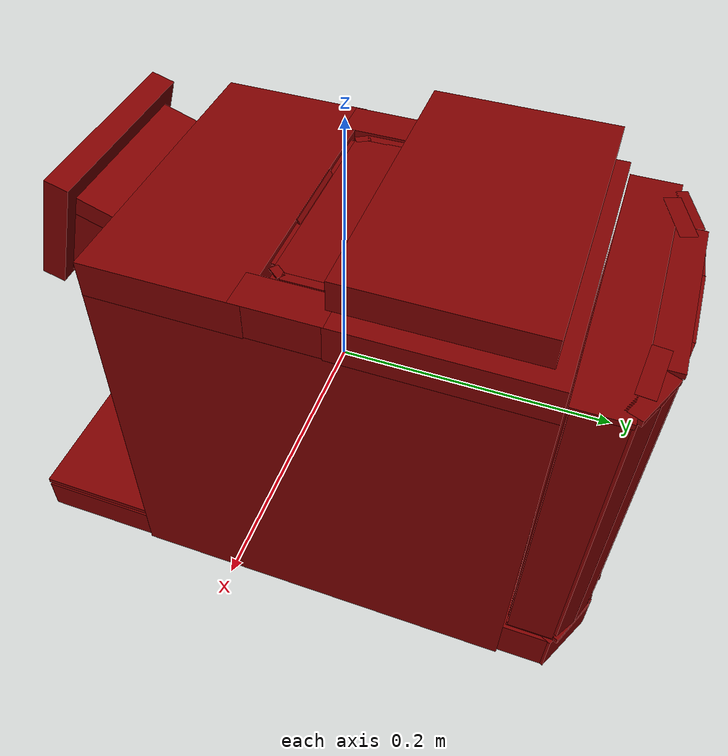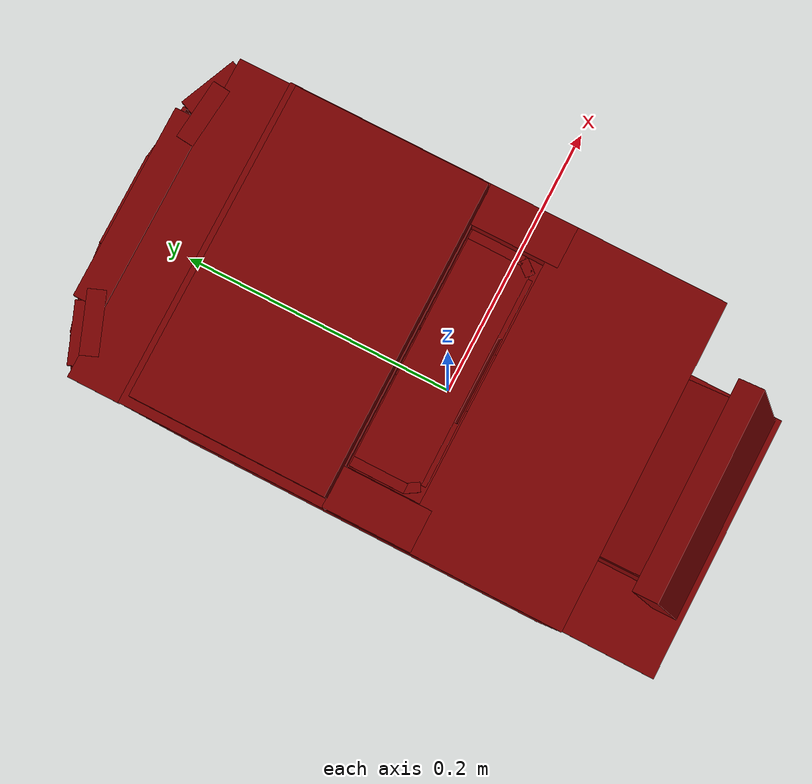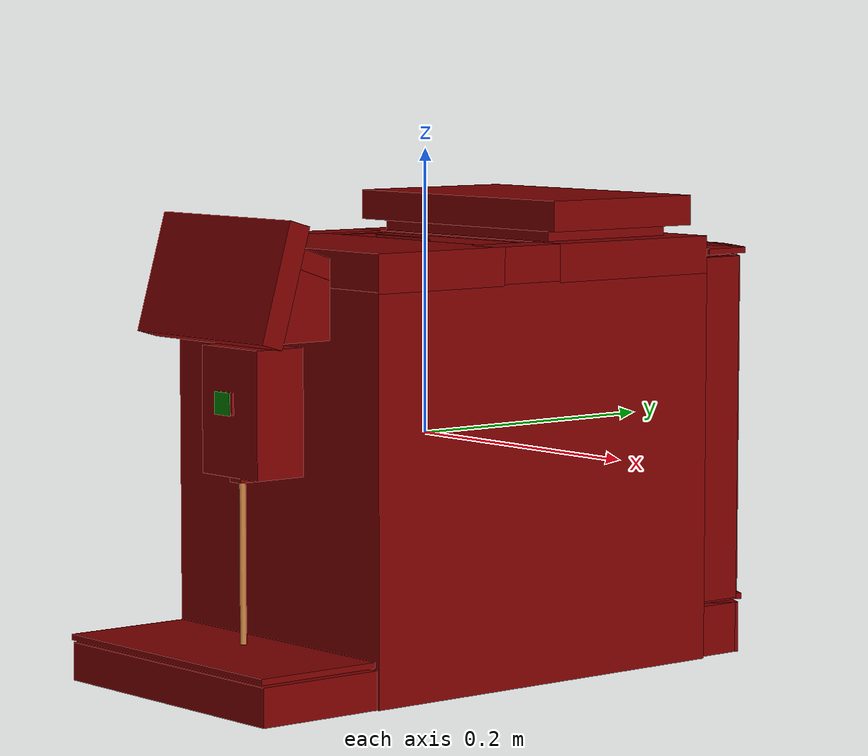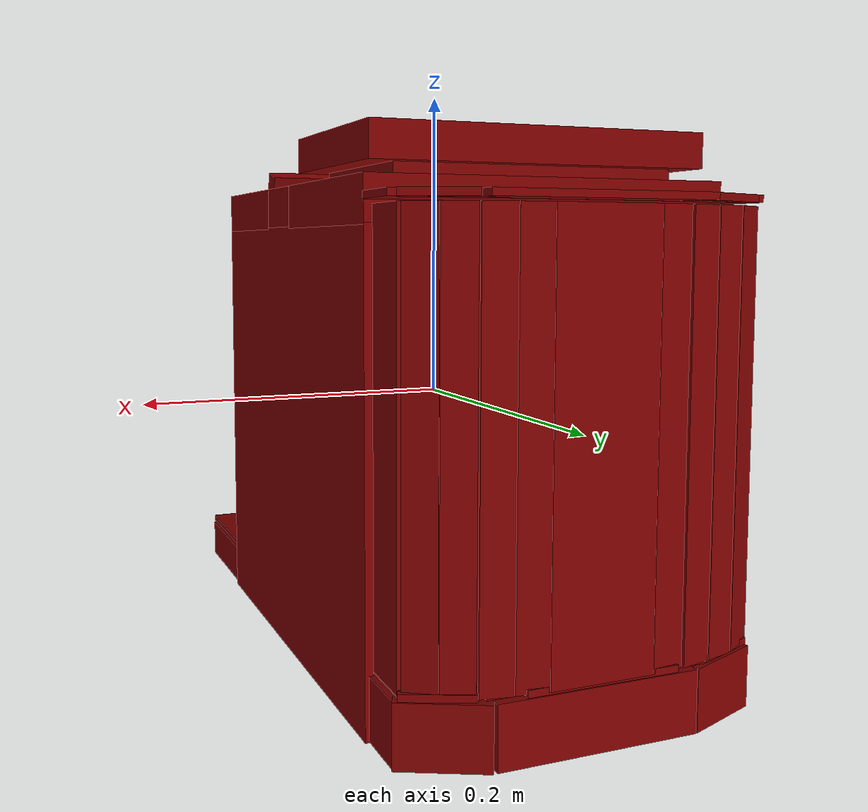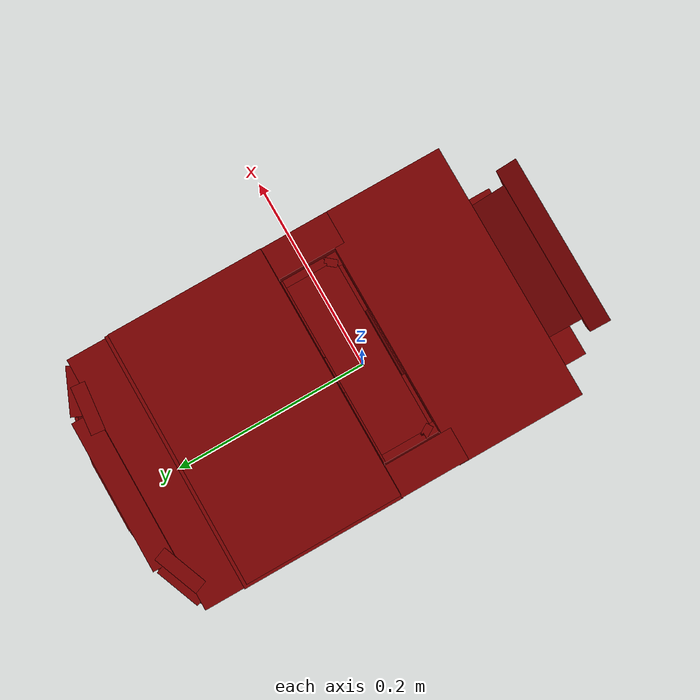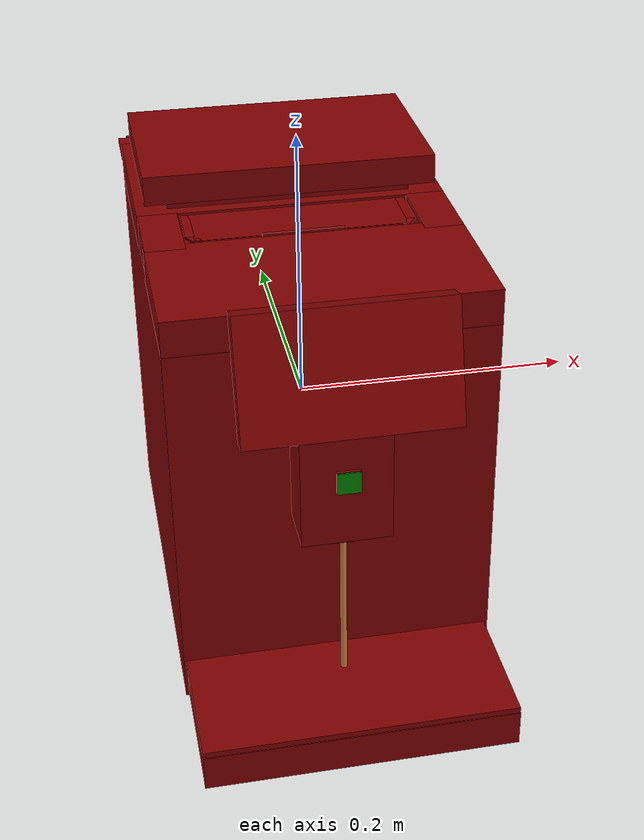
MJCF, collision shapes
<?xml version='1.0' encoding='UTF-8'?>
<mujoco model="model">
  <compiler angle="radian"/>
  <asset>
    <mesh file="visuals/Body001.obj" name="Body001_vis"/>
    <mesh file="visuals/Button001.obj" name="Button001_vis"/>
    <mesh file="visuals/Container001_Clear.obj" name="Container001_Clear_vis"/>
    <mesh file="visuals/Lid001.obj" name="Lid001_vis"/>
    <mesh file="visuals/Lid002.obj" name="Lid002_vis"/>
    <mesh file="visuals/Lid003.obj" name="Lid003_vis"/>
    <texture file="visuals/T_BC001.png" name="Body001_material" type="2d"/>
    <material name="Body001_material" rgba="1 1 1 1.0" texture="Body001_material" shininess="0.141421377658844" specular="0.3103448502657381"/>
    <texture file="visuals/T_BC001.png" name="Button001_material" type="2d"/>
    <material name="Button001_material" rgba="1 1 1 1.0" texture="Button001_material" shininess="0.141421377658844" specular="0.3103448502657381"/>
    <material name="Container001_Clear_material" rgba="0.800000011920929 0.800000011920929 0.800000011920929 0.10000000149011612" shininess="0.5" specular="0.3103448502657381"/>
    <texture file="visuals/T_BC001.png" name="Lid002_material" type="2d"/>
    <material name="Lid002_material" rgba="1 1 1 1.0" texture="Lid002_material" shininess="0.141421377658844" specular="0.3103448502657381"/>
    <texture file="visuals/T_BC001.png" name="Lid001_material" type="2d"/>
    <material name="Lid001_material" rgba="1 1 1 1.0" texture="Lid001_material" shininess="0.141421377658844" specular="0.3103448502657381"/>
    <texture file="visuals/T_BC001.png" name="Lid003_material" type="2d"/>
    <material name="Lid003_material" rgba="1 1 1 1.0" texture="Lid003_material" shininess="0.141421377658844" specular="0.3103448502657381"/>
  </asset>
  <default>
    <default class="visual">
      <geom conaffinity="0" contype="0" group="1" type="mesh"/>
    </default>
    <default class="collision">
      <geom group="0" rgba="0.5 0 0 0.5"/>
    </default>
    <default class="spawn">
      <geom group="0" rgba="1 1 1 0.5" contype="0" conaffinity="0"/>
      <site group="0" rgba="1 1 1 0.5"/>
    </default>
    <default class="region">
      <geom group="1" conaffinity="0" contype="0" rgba="0 1 0 0"/>
    </default>
  </default>
  <worldbody>
    <body>
      <body name="object">
        <geom class="collision" type="box" pos="0.0003011711814906448 -0.17799073457717896 0.033192966133356094" size="0.008054085075855255 0.0005403523682616651 0.007759325206279755" quat="1.0 0.0 0.0 0.0" name="start_button_1" rgba="0.0 0.5 0 0.5"/>
        <site type="cylinder" rgba="0.8 0.5 0.25 1" size="0.002309805480763316 0.06732518970966339" pos="-0.000757157220505178 -0.16081690788269043 -0.08827001601457596" name="coffee_liquid"/>
        <site rgba="0 0 0 0" size="0.009999999776482582 0.009999999776482582" pos="-0.0005981758004054427 -0.16081690788269043 -0.1305193305015564" name="receptacle_place_site"/>
        <geom mesh="Body001_vis" type="mesh" solimp="0.998 0.998 0.001" solref="0.001 1" density="100" friction="0.95 0.3 0.1" class="visual" material="Body001_material"/>
        <geom class="collision" type="box" pos="0.0005011708126403391 -0.1791858673095703 -0.15207377076148987" size="0.10881728678941727 0.047741785645484924 0.01328557264059782" quat="1.0 0.0 0.0 0.0"/>
        <geom class="collision" type="box" pos="-0.00021600176114588976 0.09154794365167618 0.14016573131084442" size="0.08795017004013062 0.05493415519595146 0.011645940132439137" quat="1.0 0.0 0.0 0.0"/>
        <geom class="collision" type="box" pos="0.00045955297537148 0.016718633472919464 -0.026482120156288147" size="0.11107078194618225 0.14958705008029938 0.13887469470500946" quat="1.0 0.0 0.0 0.0"/>
        <geom class="collision" type="box" pos="0.00017662841128185391 -0.14834383130073547 0.13009198009967804" size="0.05998406186699867 0.01858730986714363 0.006974295247346163" quat="0.9864324927330017 -0.1641673892736435 0.0 0.0"/>
        <geom class="collision" type="box" pos="-2.4523049432900734e-05 -0.15162664651870728 0.026642994955182076" size="0.030804404988884926 0.020273316651582718 0.043890174478292465" quat="1.0 0.0 0.0 0.0"/>
        <geom class="collision" type="box" pos="0.00017662841128185391 -0.15607836842536926 0.10453817993402481" size="0.059982702136039734 0.023612329736351967 0.027231328189373016" quat="1.0 0.0 0.0 0.0"/>
        <geom class="collision" type="box" pos="6.620661588385701e-05 -0.17740026116371155 0.11666253209114075" size="0.07058442384004593 0.008481046184897423 0.04194463789463043" quat="0.9900364875793457 -0.14081093668937683 0.0 0.0"/>
        <geom class="collision" type="box" pos="0.00045955297537148 -0.07794994115829468 0.1245369166135788" size="0.11107104271650314 0.05485173687338829 0.013271190226078033" quat="1.0 0.0 0.0 0.0"/>
        <geom class="collision" type="box" pos="0.0001665861054789275 0.0916123166680336 0.15604513883590698" size="0.10470835119485855 0.0646548643708229 0.010565182194113731" quat="1.0 0.0 0.0 0.0"/>
        <geom class="collision" type="box" pos="-0.0007734843529760838 -0.16085365414619446 -0.019446447491645813" size="0.005841864738613367 0.005841864738613367 0.0020690702367573977" quat="1.0 0.0 0.0 0.0"/>
        <geom class="collision" type="box" pos="0.00045955297537148 0.09657047688961029 0.1245369166135788" size="0.11107270419597626 0.06969434022903442 0.013271396979689598" quat="1.0 0.0 0.0 0.0"/>
        <geom class="collision" type="box" pos="-0.09610675275325775 -0.0017713741399347782 0.1245369166135788" size="0.014041543938219547 0.029798734933137894 0.013271518051624298" quat="1.0 0.0 0.0 0.0"/>
        <geom class="collision" type="box" pos="0.09746287763118744 -0.0017713741399347782 0.1245369166135788" size="0.014041543938219547 0.029798710718750954 0.013271518051624298" quat="1.0 0.0 0.0 0.0"/>
        <geom class="collision" type="box" pos="0.05240991711616516 -0.0017713741399347782 0.11154437065124512" size="0.03158874437212944 0.029798485338687897 0.013271518051624298" quat="1.0 0.0 0.0 0.0"/>
        <geom class="collision" type="box" pos="-0.049657389521598816 -0.0017713741399347782 0.11154437065124512" size="0.03158874437212944 0.029798485338687897 0.013271518051624298" quat="1.0 0.0 0.0 0.0"/>
        <geom class="collision" type="box" pos="-0.014584955759346485 0.02118895947933197 0.1172955185174942" size="0.006562895607203245 0.00619095005095005 0.0073209479451179504" quat="0.9256789088249207 0.0 0.0 0.3783101737499237"/>
        <geom class="collision" type="box" pos="0.01806396059691906 0.021057305857539177 0.1172955185174942" size="0.006562895607203245 0.00619095005095005 0.0073209479451179504" quat="0.9256789088249207 0.0 0.0 0.3783101737499237"/>
        <geom class="collision" type="box" pos="0.0015707246493548155 0.02450474165380001 0.1172955185174942" size="0.01199507899582386 0.0035898967180401087 0.0073209479451179504" quat="1.0 0.0 0.0 0.0"/>
        <geom class="collision" type="box" pos="0.0015707246493548155 -0.019944818690419197 0.1172955185174942" size="0.020203232765197754 0.0036255766171962023 0.0073209479451179504" quat="1.0 0.0 0.0 0.0"/>
        <geom class="collision" type="box" pos="0.0005011708126403391 0.18235427141189575 -0.14650464057922363" size="0.1088203489780426 0.018528586253523827 0.01812611147761345" quat="1.0 0.0 0.0 0.0"/>
        <geom class="collision" type="box" pos="0.0011301548220217228 0.21261052787303925 -0.14650464057922363" size="0.0603262297809124 0.011399822309613228 0.018126174807548523" quat="1.0 0.0 0.0 0.0"/>
        <geom class="collision" type="box" pos="-0.08000875264406204 0.20396199822425842 -0.14650464057922363" size="0.02581709809601307 0.011399822309613228 0.018126174807548523" quat="0.9829859137535095 0.0 0.0 0.18368110060691833"/>
        <geom class="collision" type="box" pos="0.08211182057857513 0.20286127924919128 -0.14650464057922363" size="0.02581709809601307 0.011399822309613228 0.018126174807548523" quat="0.975176215171814 0.0 -0.0 -0.2214302271604538"/>
        <body name="Button001">
          <joint axis="0.0 1.0 0.0" pos="-0.013334604911506176 -0.1728573441505432 0.033232513815164566" limited="true" name="Button001_joint" range="0.0 0.001" type="slide" damping="1" frictionloss="1" armature=".01" stiffness="0.05"/>
          <geom mesh="Button001_vis" type="mesh" solimp="0.998 0.998 0.001" solref="0.001 1" density="100" friction="0.95 0.3 0.1" class="visual" material="Button001_material"/>
          <geom class="collision" type="box" pos="0.0003011711814906448 -0.17564643919467926 0.033192966133356094" size="0.008054065518081188 0.0010381247848272324 0.007759295869618654" quat="1.0 0.0 0.0 0.0"/>
        </body>
        <body name="Container001_Clear">
          <joint axis="0.0 0.0 1.0" pos="-3.593117401847437e-17 0.19722360372543335 -0.002055507153272629" limited="true" name="Container001_Clear_joint" range="0.0 0.3" type="slide" damping="1" frictionloss="1" armature=".01" stiffness="0.05"/>
          <geom mesh="Container001_Clear_vis" type="mesh" solimp="0.998 0.998 0.001" solref="0.001 1" density="100" friction="0.95 0.3 0.1" class="visual" material="Container001_Clear_material"/>
          <geom class="collision" type="box" pos="-0.10461921989917755 0.18554829061031342 -0.0017310692928731441" size="0.0029024272225797176 0.016712917014956474 0.12360402196645737" quat="1.0 0.0 0.0 0.0"/>
          <geom class="collision" type="box" pos="0.10467793047428131 0.18554829061031342 -0.0017310692928731441" size="0.0029024286195635796 0.01671292446553707 0.12360420823097229" quat="1.0 0.0 0.0 0.0"/>
          <geom class="collision" type="box" pos="0.09747956693172455 0.20838825404644012 -0.0017310692928731441" size="0.00128055305685848 0.009396797977387905 0.12360680103302002" quat="0.8711124062538147 0.0 0.0 0.49108371138572693"/>
          <geom class="collision" type="box" pos="0.08055379986763 0.21668735146522522 -0.0017310692928731441" size="0.00128055305685848 0.009396797977387905 0.12360680103302002" quat="0.8197398781776428 0.0 0.0 0.5727360248565674"/>
          <geom class="collision" type="box" pos="0.061662457883358 0.22203807532787323 -0.0017310692928731441" size="0.00128055305685848 0.009396797977387905 0.12360680103302002" quat="0.7686080932617188 0.0 0.0 0.6397199630737305"/>
          <geom class="collision" type="box" pos="0.04255271703004837 0.2247680425643921 -0.0017310692928731441" size="0.0009209058480337262 0.00939679704606533 0.12360680103302002" quat="0.7504639625549316 0.0 0.0 0.6609113812446594"/>
          <geom class="collision" type="box" pos="0.0023676659911870956 0.22607843577861786 -0.0017310692928731441" size="0.030940759927034378 0.0010851126862689853 0.12360680103302002" quat="1.0 0.0 0.0 0.0"/>
          <geom class="collision" type="box" pos="-0.03814498707652092 0.22498643398284912 -0.0017310692928731441" size="0.0009209058480337262 0.00939679704606533 0.12360680103302002" quat="0.6705570220947266 0.0 0.0 0.7418580055236816"/>
          <geom class="collision" type="box" pos="-0.05780070275068283 0.22236567735671997 -0.0017310692928731441" size="0.00128055305685848 0.009396797977387905 0.12360680103302002" quat="0.6277451515197754 0.0 0.0 0.7784189581871033"/>
          <geom class="collision" type="box" pos="-0.07680124789476395 0.21777933835983276 -0.0017310692928731441" size="0.00128055305685848 0.009396797977387905 0.12360680103302002" quat="0.6012334227561951 0.0 0.0 0.7990734577178955"/>
          <geom class="collision" type="box" pos="-0.09591098874807358 0.20937104523181915 -0.0017310692928731441" size="0.00128055305685848 0.010482924059033394 0.12360680103302002" quat="0.4974082112312317 0.0 0.0 0.8675166368484497"/>
          <geom class="collision" type="box" pos="-0.000679711636621505 0.1687229871749878 -0.0017310692928731441" size="0.10298636555671692 0.0008627320057712495 0.1236082911491394" quat="1.0 0.0 0.0 0.0"/>
          <geom class="collision" type="box" pos="6.953079719096422e-05 0.18538132309913635 -0.12450899183750153" size="0.10737280547618866 0.017721692100167274 0.002066620159894228" quat="1.0 0.0 0.0 0.0"/>
          <geom class="collision" type="box" pos="0.0008608940406702459 0.2116767168045044 -0.12450899183750153" size="0.0660717636346817 0.010259545408189297 0.002066620159894228" quat="1.0 0.0 0.0 0.0"/>
          <geom class="collision" type="box" pos="0.08808010071516037 0.20892319083213806 -0.12450899183750153" size="0.02030433900654316 0.0059402561746537685 0.002066620159894228" quat="0.9794461727142334 0.0 -0.0 -0.20170582830905914"/>
          <geom class="collision" type="box" pos="0.07116951048374176 0.2069515585899353 -0.12450899183750153" size="0.020700877532362938 0.0060562677681446075 0.002106980886310339" quat="0.9988179206848145 0.0 -0.0 -0.04860815405845642"/>
          <geom class="collision" type="box" pos="-0.08376731723546982 0.2086864858865738 -0.12450899183750153" size="0.02030433900654316 0.0059402561746537685 0.002066620159894228" quat="0.9826101064682007 0.0 0.0 0.18568100035190582"/>
          <geom class="collision" type="box" pos="-0.0745321735739708 0.20522268116474152 -0.12450899183750153" size="0.020700877532362938 0.0060562677681446075 0.002106980886310339" quat="0.9825927019119263 0.0 0.0 0.18577304482460022"/>
          <geom class="collision" type="box" pos="0.0008608940406702459 0.2216206043958664 -0.12450899183750153" size="0.04541341960430145 0.005132216028869152 0.002066619461402297" quat="1.0 0.0 0.0 0.0"/>
          <body name="Lid002">
            <joint axis="0.0 0.0 1.0" pos="-3.593116740102947e-17 0.19761404395103455 0.1262483149766922" limited="true" name="Lid002_joint" range="0.0 0.2" type="slide" damping="1" frictionloss="1" armature=".01" stiffness="0.05"/>
            <geom mesh="Lid002_vis" type="mesh" solimp="0.998 0.998 0.001" solref="0.001 1" density="100" friction="0.95 0.3 0.1" class="visual" material="Lid002_material"/>
            <geom class="collision" type="box" pos="0.0008608940406702459 0.18538132309913635 0.12621445953845978" size="0.11180806159973145 0.01772192120552063 0.002066620159894228" quat="1.0 0.0 0.0 0.0"/>
            <geom class="collision" type="box" pos="0.0008608940406702459 0.21373094618320465 0.12621445953845978" size="0.0660717636346817 0.010259545408189297 0.002066620159894228" quat="1.0 0.0 0.0 0.0"/>
            <geom class="collision" type="box" pos="0.08808010071516037 0.20892319083213806 0.12621445953845978" size="0.02030433900654316 0.0059402561746537685 0.002066620159894228" quat="0.9794461727142334 0.0 -0.0 -0.20170582830905914"/>
            <geom class="collision" type="box" pos="0.07116951048374176 0.2069515585899353 0.12621445953845978" size="0.020700877532362938 0.0060562677681446075 0.002106980886310339" quat="0.9988179206848145 0.0 -0.0 -0.04860815405845642"/>
            <geom class="collision" type="box" pos="-0.08376731723546982 0.2086864858865738 0.12621445953845978" size="0.02030433900654316 0.0059402561746537685 0.002066620159894228" quat="0.9826101064682007 0.0 0.0 0.18568100035190582"/>
            <geom class="collision" type="box" pos="-0.0745321735739708 0.20522268116474152 0.12621445953845978" size="0.020700877532362938 0.0060562677681446075 0.002106980886310339" quat="0.9825927019119263 0.0 0.0 0.18577304482460022"/>
          </body>
        </body>
        <body name="Lid001">
          <joint axis="0.0 0.0 1.0" pos="7.38389790058136e-05 -0.1806372106075287 -0.13534703850746155" limited="true" name="Lid001_joint" range="0.0 0.1" type="slide" damping="1" frictionloss="1" armature=".01" stiffness="0.05"/>
          <geom mesh="Lid001_vis" type="mesh" solimp="0.998 0.998 0.001" solref="0.001 1" density="100" friction="0.95 0.3 0.1" class="visual" material="Lid001_material"/>
          <geom class="collision" type="box" pos="-6.161471537780017e-05 -0.18074800074100494 -0.13510006666183472" size="0.10867471992969513 0.047057874500751495 0.0020639323629438877" quat="1.0 0.0 0.0 0.0"/>
        </body>
        <body name="Lid003">
          <joint axis="-1.0 0.0 0.0" pos="3.616511821746826e-05 0.02466830611228943 0.1367833912372589" limited="true" name="Lid003_joint" range="0.0 1.5707963267948966" type="hinge" damping="1" frictionloss="1" armature=".01" stiffness="0.05"/>
          <geom mesh="Lid003_vis" type="mesh" solimp="0.998 0.998 0.001" solref="0.001 1" density="100" friction="0.95 0.3 0.1" class="visual" material="Lid003_material"/>
          <geom class="collision" type="box" pos="0.00010284206655342132 0.0032059517689049244 0.13626565039157867" size="0.07502283900976181 0.021882807835936546 0.0005226938519626856" quat="1.0 0.0 0.0 0.0"/>
          <geom class="collision" type="box" pos="0.00023984056315384805 -0.020661847665905952 0.13795267045497894" size="0.028674963861703873 0.002018730388954282 0.0005227021756581962" quat="0.858868420124054 -0.5121963024139404 -0.0 0.0"/>
          <geom class="collision" type="box" pos="-0.0008387047564610839 -0.020193705335259438 0.13599960505962372" size="0.0703778937458992 0.0016356568085029721 0.0005226960056461394" quat="1.0 0.0 0.0 0.0"/>
          <geom class="collision" type="box" pos="-0.07736077904701233 0.006843746639788151 0.13626565039157867" size="0.0032387441024184227 0.018238293007016182 0.000522696296684444" quat="1.0 0.0 0.0 0.0"/>
          <geom class="collision" type="box" pos="-0.07517170906066895 -0.014385079964995384 0.13626565039157867" size="0.0031362457666546106 0.005251723807305098 0.0005227021756581962" quat="0.9614091515541077 0.0 0.0 0.27512261271476746"/>
          <geom class="collision" type="box" pos="0.07813766598701477 0.006843746639788151 0.13626565039157867" size="0.0032387441024184227 0.018238302320241928 0.0005226966459304094" quat="1.0 0.0 0.0 0.0"/>
          <geom class="collision" type="box" pos="0.07527428865432739 -0.014960899017751217 0.13626565039157867" size="0.0031362457666546106 0.005251723807305098 0.0005227021756581962" quat="0.33856338262557983 0.0 0.0 0.9409435987472534"/>
        </body>
        <geom class="region" name="reg_main" type="box" pos="1.862645149230957e-09 0.0 0.0" size="0.1122092455625534 0.2282101809978485 0.1650678962469101"/>
      </body>
    </body>
  </worldbody>
  <actuator>
    <motor name="Button001_joint_actuator" joint="Button001_joint" gear="0.5"/>
    <motor name="Container001_Clear_joint_actuator" joint="Container001_Clear_joint" gear="10"/>
    <motor name="Lid001_joint_actuator" joint="Lid001_joint" gear="10"/>
    <motor name="Lid003_joint_actuator" joint="Lid003_joint" gear="5"/>
    <motor name="Lid002_joint_actuator" joint="Lid002_joint" gear="10"/>
  </actuator>
</mujoco>
